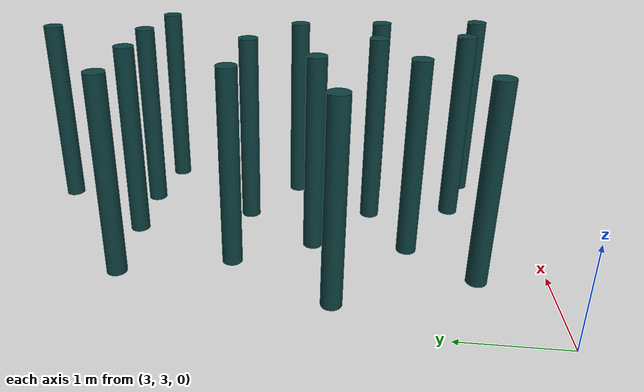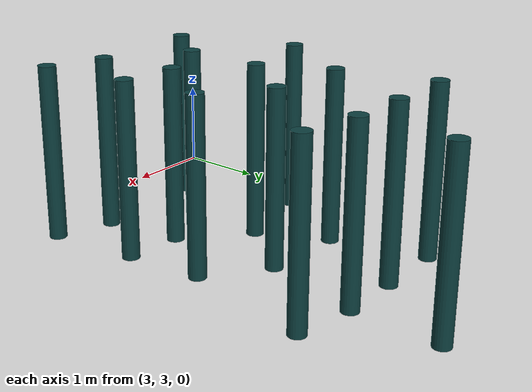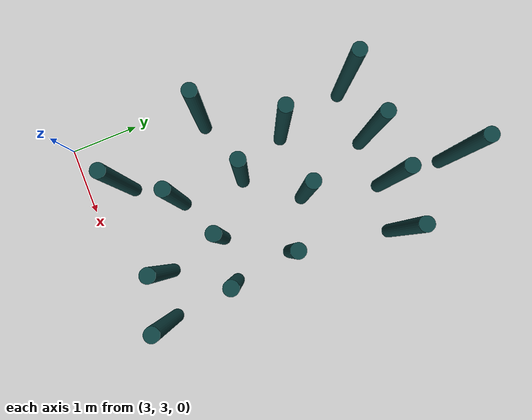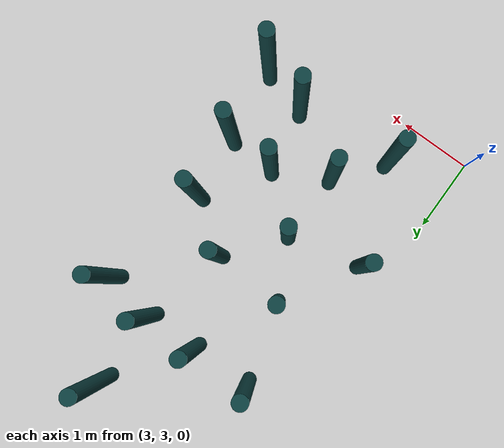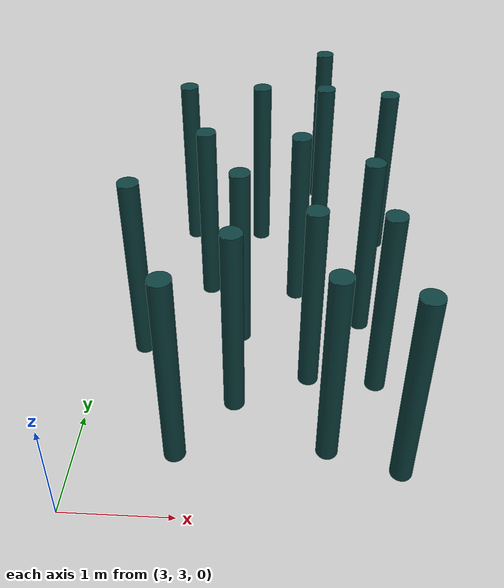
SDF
<sdf version="1.6">
 <world name="default">
  <model name="obstacle_clone_0">
   <link name="link">
    <inertial>
     <mass>112.569</mass>
     <inertia><ixx>33.2512</ixx><ixy>0</ixy><ixz>0</ixz><iyy>33.2512</iyy><iyz>0</iyz><izz>0.537779</izz></inertia>
    </inertial>
    <visual name="visual">
     <geometry><cylinder><radius>0.1</radius><length>2</length></cylinder></geometry>
     <material>
      <script><name>Gazebo/Grey</name><uri>file://media/materials/scripts/gazebo.material</uri></script>
      <shader type="pixel"><normal_map>__default__</normal_map></shader>
      <ambient>0.05 0.25 0.25 1</ambient>
      <diffuse>0.3 0.3 0.3 1</diffuse>
      <specular>0.01 0.01 0.01 1</specular>
      <emissive>0.1 0.1 0.1 1</emissive>
      <lighting>1</lighting>
     </material>
    </visual>
    <collision name="collision">
     <geometry><cylinder><radius>0.097748</radius><length>1.87509</length></cylinder></geometry>
     <surface>
      <friction>
       <ode><mu>1</mu><mu2>1</mu2><fdir1>0 0 0</fdir1><slip1>0</slip1><slip2>0</slip2></ode>
       <torsional>
        <coefficient>1</coefficient>
        <patch_radius>0</patch_radius>
        <surface_radius>0</surface_radius>
        <use_patch_radius>1</use_patch_radius>
        <ode><slip>0</slip></ode>
       </torsional>
      </friction>
      <bounce><restitution_coefficient>0</restitution_coefficient><threshold>1e+06</threshold></bounce>
      <contact>
       <collide_without_contact>0</collide_without_contact>
       <collide_without_contact_bitmask>1</collide_without_contact_bitmask>
       <collide_bitmask>1</collide_bitmask>
       <ode>
        <soft_cfm>0</soft_cfm>
        <soft_erp>0.2</soft_erp>
        <kp>1e+13</kp>
        <kd>1</kd>
        <max_vel>0.01</max_vel>
        <min_depth>0</min_depth>
       </ode>
       <bullet>
        <split_impulse>1</split_impulse>
        <split_impulse_penetration_threshold>-0.01</split_impulse_penetration_threshold>
        <soft_cfm>0</soft_cfm>
        <soft_erp>0.2</soft_erp>
        <kp>1e+13</kp>
        <kd>1</kd>
       </bullet>
      </contact>
     </surface>
    </collision>
   </link>
   <static>0</static>
   <pose>3.40506 5.00264 0.987551 -5.6e-05 2.7e-05 0.015402</pose>
  </model>
  <model name="obstacle_clone_1">
   <link name="link">
    <inertial>
     <mass>112.569</mass>
     <inertia><ixx>33.2512</ixx><ixy>0</ixy><ixz>0</ixz><iyy>33.2512</iyy><iyz>0</iyz><izz>0.537779</izz></inertia>
    </inertial>
    <visual name="visual">
     <geometry><cylinder><radius>0.1</radius><length>2</length></cylinder></geometry>
     <material>
      <script><name>Gazebo/Grey</name><uri>file://media/materials/scripts/gazebo.material</uri></script>
      <shader type="pixel"><normal_map>__default__</normal_map></shader>
      <ambient>0.05 0.25 0.25 1</ambient>
      <diffuse>0.3 0.3 0.3 1</diffuse>
      <specular>0.01 0.01 0.01 1</specular>
      <emissive>0.1 0.1 0.1 1</emissive>
      <lighting>1</lighting>
     </material>
    </visual>
    <collision name="collision">
     <geometry><cylinder><radius>0.097748</radius><length>1.87509</length></cylinder></geometry>
     <surface>
      <friction>
       <ode><mu>1</mu><mu2>1</mu2><fdir1>0 0 0</fdir1><slip1>0</slip1><slip2>0</slip2></ode>
       <torsional>
        <coefficient>1</coefficient>
        <patch_radius>0</patch_radius>
        <surface_radius>0</surface_radius>
        <use_patch_radius>1</use_patch_radius>
        <ode><slip>0</slip></ode>
       </torsional>
      </friction>
      <bounce><restitution_coefficient>0</restitution_coefficient><threshold>1e+06</threshold></bounce>
      <contact>
       <collide_without_contact>0</collide_without_contact>
       <collide_without_contact_bitmask>1</collide_without_contact_bitmask>
       <collide_bitmask>1</collide_bitmask>
       <ode>
        <soft_cfm>0</soft_cfm>
        <soft_erp>0.2</soft_erp>
        <kp>1e+13</kp>
        <kd>1</kd>
        <max_vel>0.01</max_vel>
        <min_depth>0</min_depth>
       </ode>
       <bullet>
        <split_impulse>1</split_impulse>
        <split_impulse_penetration_threshold>-0.01</split_impulse_penetration_threshold>
        <soft_cfm>0</soft_cfm>
        <soft_erp>0.2</soft_erp>
        <kp>1e+13</kp>
        <kd>1</kd>
       </bullet>
      </contact>
     </surface>
    </collision>
   </link>
   <static>0</static>
   <pose>5.64544 5.48256 0.987542 -6e-05 2.6e-05 0.015098</pose>
  </model>
  <model name="obstacle_clone_3">
   <link name="link">
    <inertial>
     <mass>112.569</mass>
     <inertia><ixx>33.2512</ixx><ixy>0</ixy><ixz>0</ixz><iyy>33.2512</iyy><iyz>0</iyz><izz>0.537779</izz></inertia>
    </inertial>
    <visual name="visual">
     <geometry><cylinder><radius>0.1</radius><length>2</length></cylinder></geometry>
     <material>
      <script><name>Gazebo/Grey</name><uri>file://media/materials/scripts/gazebo.material</uri></script>
      <shader type="pixel"><normal_map>__default__</normal_map></shader>
      <ambient>0.05 0.25 0.25 1</ambient>
      <diffuse>0.3 0.3 0.3 1</diffuse>
      <specular>0.01 0.01 0.01 1</specular>
      <emissive>0.1 0.1 0.1 1</emissive>
      <lighting>1</lighting>
     </material>
    </visual>
    <collision name="collision">
     <geometry><cylinder><radius>0.097748</radius><length>1.87509</length></cylinder></geometry>
     <surface>
      <friction>
       <ode><mu>1</mu><mu2>1</mu2><fdir1>0 0 0</fdir1><slip1>0</slip1><slip2>0</slip2></ode>
       <torsional>
        <coefficient>1</coefficient>
        <patch_radius>0</patch_radius>
        <surface_radius>0</surface_radius>
        <use_patch_radius>1</use_patch_radius>
        <ode><slip>0</slip></ode>
       </torsional>
      </friction>
      <bounce><restitution_coefficient>0</restitution_coefficient><threshold>1e+06</threshold></bounce>
      <contact>
       <collide_without_contact>0</collide_without_contact>
       <collide_without_contact_bitmask>1</collide_without_contact_bitmask>
       <collide_bitmask>1</collide_bitmask>
       <ode>
        <soft_cfm>0</soft_cfm>
        <soft_erp>0.2</soft_erp>
        <kp>1e+13</kp>
        <kd>1</kd>
        <max_vel>0.01</max_vel>
        <min_depth>0</min_depth>
       </ode>
       <bullet>
        <split_impulse>1</split_impulse>
        <split_impulse_penetration_threshold>-0.01</split_impulse_penetration_threshold>
        <soft_cfm>0</soft_cfm>
        <soft_erp>0.2</soft_erp>
        <kp>1e+13</kp>
        <kd>1</kd>
       </bullet>
      </contact>
     </surface>
    </collision>
   </link>
   <static>0</static>
   <pose>4.51879 7.09694 0.987544 -3.2e-05 1.5e-05 0.004475</pose>
  </model>
  <model name="obstacle_clone_4">
   <link name="link">
    <inertial>
     <mass>112.569</mass>
     <inertia><ixx>33.2512</ixx><ixy>0</ixy><ixz>0</ixz><iyy>33.2512</iyy><iyz>0</iyz><izz>0.537779</izz></inertia>
    </inertial>
    <visual name="visual">
     <geometry><cylinder><radius>0.1</radius><length>2</length></cylinder></geometry>
     <material>
      <script><name>Gazebo/Grey</name><uri>file://media/materials/scripts/gazebo.material</uri></script>
      <shader type="pixel"><normal_map>__default__</normal_map></shader>
      <ambient>0.05 0.25 0.25 1</ambient>
      <diffuse>0.3 0.3 0.3 1</diffuse>
      <specular>0.01 0.01 0.01 1</specular>
      <emissive>0.1 0.1 0.1 1</emissive>
      <lighting>1</lighting>
     </material>
    </visual>
    <collision name="collision">
     <geometry><cylinder><radius>0.097748</radius><length>1.87509</length></cylinder></geometry>
     <surface>
      <friction>
       <ode><mu>1</mu><mu2>1</mu2><fdir1>0 0 0</fdir1><slip1>0</slip1><slip2>0</slip2></ode>
       <torsional>
        <coefficient>1</coefficient>
        <patch_radius>0</patch_radius>
        <surface_radius>0</surface_radius>
        <use_patch_radius>1</use_patch_radius>
        <ode><slip>0</slip></ode>
       </torsional>
      </friction>
      <bounce><restitution_coefficient>0</restitution_coefficient><threshold>1e+06</threshold></bounce>
      <contact>
       <collide_without_contact>0</collide_without_contact>
       <collide_without_contact_bitmask>1</collide_without_contact_bitmask>
       <collide_bitmask>1</collide_bitmask>
       <ode>
        <soft_cfm>0</soft_cfm>
        <soft_erp>0.2</soft_erp>
        <kp>1e+13</kp>
        <kd>1</kd>
        <max_vel>0.01</max_vel>
        <min_depth>0</min_depth>
       </ode>
       <bullet>
        <split_impulse>1</split_impulse>
        <split_impulse_penetration_threshold>-0.01</split_impulse_penetration_threshold>
        <soft_cfm>0</soft_cfm>
        <soft_erp>0.2</soft_erp>
        <kp>1e+13</kp>
        <kd>1</kd>
       </bullet>
      </contact>
     </surface>
    </collision>
   </link>
   <static>0</static>
   <pose>4.3863 4.28366 0.987541 -5e-05 2.3e-05 0.013957</pose>
  </model>
  <model name="obstacle_clone_5">
   <link name="link">
    <inertial>
     <mass>112.569</mass>
     <inertia><ixx>33.2512</ixx><ixy>0</ixy><ixz>0</ixz><iyy>33.2512</iyy><iyz>0</iyz><izz>0.537779</izz></inertia>
    </inertial>
    <visual name="visual">
     <geometry><cylinder><radius>0.1</radius><length>2</length></cylinder></geometry>
     <material>
      <script><name>Gazebo/Grey</name><uri>file://media/materials/scripts/gazebo.material</uri></script>
      <shader type="pixel"><normal_map>__default__</normal_map></shader>
      <ambient>0.05 0.25 0.25 1</ambient>
      <diffuse>0.3 0.3 0.3 1</diffuse>
      <specular>0.01 0.01 0.01 1</specular>
      <emissive>0.1 0.1 0.1 1</emissive>
      <lighting>1</lighting>
     </material>
    </visual>
    <collision name="collision">
     <geometry><cylinder><radius>0.097748</radius><length>1.87509</length></cylinder></geometry>
     <surface>
      <friction>
       <ode><mu>1</mu><mu2>1</mu2><fdir1>0 0 0</fdir1><slip1>0</slip1><slip2>0</slip2></ode>
       <torsional>
        <coefficient>1</coefficient>
        <patch_radius>0</patch_radius>
        <surface_radius>0</surface_radius>
        <use_patch_radius>1</use_patch_radius>
        <ode><slip>0</slip></ode>
       </torsional>
      </friction>
      <bounce><restitution_coefficient>0</restitution_coefficient><threshold>1e+06</threshold></bounce>
      <contact>
       <collide_without_contact>0</collide_without_contact>
       <collide_without_contact_bitmask>1</collide_without_contact_bitmask>
       <collide_bitmask>1</collide_bitmask>
       <ode>
        <soft_cfm>0</soft_cfm>
        <soft_erp>0.2</soft_erp>
        <kp>1e+13</kp>
        <kd>1</kd>
        <max_vel>0.01</max_vel>
        <min_depth>0</min_depth>
       </ode>
       <bullet>
        <split_impulse>1</split_impulse>
        <split_impulse_penetration_threshold>-0.01</split_impulse_penetration_threshold>
        <soft_cfm>0</soft_cfm>
        <soft_erp>0.2</soft_erp>
        <kp>1e+13</kp>
        <kd>1</kd>
       </bullet>
      </contact>
     </surface>
    </collision>
   </link>
   <static>0</static>
   <pose>4.00006 5.99998 0.987543 -2.8e-05 1.4e-05 0.0121</pose>
  </model>
  <model name="obstacle_clone_7">
   <link name="link">
    <inertial>
     <mass>112.569</mass>
     <inertia><ixx>33.2512</ixx><ixy>0</ixy><ixz>0</ixz><iyy>33.2512</iyy><iyz>0</iyz><izz>0.537779</izz></inertia>
    </inertial>
    <visual name="visual">
     <geometry><cylinder><radius>0.1</radius><length>2</length></cylinder></geometry>
     <material>
      <script><name>Gazebo/Grey</name><uri>file://media/materials/scripts/gazebo.material</uri></script>
      <shader type="pixel"><normal_map>__default__</normal_map></shader>
      <ambient>0.05 0.25 0.25 1</ambient>
      <diffuse>0.3 0.3 0.3 1</diffuse>
      <specular>0.01 0.01 0.01 1</specular>
      <emissive>0.1 0.1 0.1 1</emissive>
      <lighting>1</lighting>
     </material>
    </visual>
    <collision name="collision">
     <geometry><cylinder><radius>0.097748</radius><length>1.87509</length></cylinder></geometry>
     <surface>
      <friction>
       <ode><mu>1</mu><mu2>1</mu2><fdir1>0 0 0</fdir1><slip1>0</slip1><slip2>0</slip2></ode>
       <torsional>
        <coefficient>1</coefficient>
        <patch_radius>0</patch_radius>
        <surface_radius>0</surface_radius>
        <use_patch_radius>1</use_patch_radius>
        <ode><slip>0</slip></ode>
       </torsional>
      </friction>
      <bounce><restitution_coefficient>0</restitution_coefficient><threshold>1e+06</threshold></bounce>
      <contact>
       <collide_without_contact>0</collide_without_contact>
       <collide_without_contact_bitmask>1</collide_without_contact_bitmask>
       <collide_bitmask>1</collide_bitmask>
       <ode>
        <soft_cfm>0</soft_cfm>
        <soft_erp>0.2</soft_erp>
        <kp>1e+13</kp>
        <kd>1</kd>
        <max_vel>0.01</max_vel>
        <min_depth>0</min_depth>
       </ode>
       <bullet>
        <split_impulse>1</split_impulse>
        <split_impulse_penetration_threshold>-0.01</split_impulse_penetration_threshold>
        <soft_cfm>0</soft_cfm>
        <soft_erp>0.2</soft_erp>
        <kp>1e+13</kp>
        <kd>1</kd>
       </bullet>
      </contact>
     </surface>
    </collision>
   </link>
   <static>0</static>
   <pose>5.25653 3.76481 0.987542 -6.1e-05 2.9e-05 0.02062</pose>
  </model>
  <model name="obstacle_clone_8">
   <link name="link">
    <inertial>
     <mass>112.569</mass>
     <inertia><ixx>33.2512</ixx><ixy>0</ixy><ixz>0</ixz><iyy>33.2512</iyy><iyz>0</iyz><izz>0.537779</izz></inertia>
    </inertial>
    <visual name="visual">
     <geometry><cylinder><radius>0.1</radius><length>2</length></cylinder></geometry>
     <material>
      <script><name>Gazebo/Grey</name><uri>file://media/materials/scripts/gazebo.material</uri></script>
      <shader type="pixel"><normal_map>__default__</normal_map></shader>
      <ambient>0.05 0.25 0.25 1</ambient>
      <diffuse>0.3 0.3 0.3 1</diffuse>
      <specular>0.01 0.01 0.01 1</specular>
      <emissive>0.1 0.1 0.1 1</emissive>
      <lighting>1</lighting>
     </material>
    </visual>
    <collision name="collision">
     <geometry><cylinder><radius>0.097748</radius><length>1.87509</length></cylinder></geometry>
     <surface>
      <friction>
       <ode><mu>1</mu><mu2>1</mu2><fdir1>0 0 0</fdir1><slip1>0</slip1><slip2>0</slip2></ode>
       <torsional>
        <coefficient>1</coefficient>
        <patch_radius>0</patch_radius>
        <surface_radius>0</surface_radius>
        <use_patch_radius>1</use_patch_radius>
        <ode><slip>0</slip></ode>
       </torsional>
      </friction>
      <bounce><restitution_coefficient>0</restitution_coefficient><threshold>1e+06</threshold></bounce>
      <contact>
       <collide_without_contact>0</collide_without_contact>
       <collide_without_contact_bitmask>1</collide_without_contact_bitmask>
       <collide_bitmask>1</collide_bitmask>
       <ode>
        <soft_cfm>0</soft_cfm>
        <soft_erp>0.2</soft_erp>
        <kp>1e+13</kp>
        <kd>1</kd>
        <max_vel>0.01</max_vel>
        <min_depth>0</min_depth>
       </ode>
       <bullet>
        <split_impulse>1</split_impulse>
        <split_impulse_penetration_threshold>-0.01</split_impulse_penetration_threshold>
        <soft_cfm>0</soft_cfm>
        <soft_erp>0.2</soft_erp>
        <kp>1e+13</kp>
        <kd>1</kd>
       </bullet>
      </contact>
     </surface>
    </collision>
   </link>
   <static>0</static>
   <pose>4.96005 5.95574 0.987552 -6.2e-05 2.9e-05 0.015441</pose>
  </model>
  <model name="obstacle_clone_10">
   <link name="link">
    <inertial>
     <mass>112.569</mass>
     <inertia><ixx>33.2512</ixx><ixy>0</ixy><ixz>0</ixz><iyy>33.2512</iyy><iyz>0</iyz><izz>0.537779</izz></inertia>
    </inertial>
    <visual name="visual">
     <geometry><cylinder><radius>0.1</radius><length>2</length></cylinder></geometry>
     <material>
      <script><name>Gazebo/Grey</name><uri>file://media/materials/scripts/gazebo.material</uri></script>
      <shader type="pixel"><normal_map>__default__</normal_map></shader>
      <ambient>0.05 0.25 0.25 1</ambient>
      <diffuse>0.3 0.3 0.3 1</diffuse>
      <specular>0.01 0.01 0.01 1</specular>
      <emissive>0.1 0.1 0.1 1</emissive>
      <lighting>1</lighting>
     </material>
    </visual>
    <collision name="collision">
     <geometry><cylinder><radius>0.097748</radius><length>1.87509</length></cylinder></geometry>
     <surface>
      <friction>
       <ode><mu>1</mu><mu2>1</mu2><fdir1>0 0 0</fdir1><slip1>0</slip1><slip2>0</slip2></ode>
       <torsional>
        <coefficient>1</coefficient>
        <patch_radius>0</patch_radius>
        <surface_radius>0</surface_radius>
        <use_patch_radius>1</use_patch_radius>
        <ode><slip>0</slip></ode>
       </torsional>
      </friction>
      <bounce><restitution_coefficient>0</restitution_coefficient><threshold>1e+06</threshold></bounce>
      <contact>
       <collide_without_contact>0</collide_without_contact>
       <collide_without_contact_bitmask>1</collide_without_contact_bitmask>
       <collide_bitmask>1</collide_bitmask>
       <ode>
        <soft_cfm>0</soft_cfm>
        <soft_erp>0.2</soft_erp>
        <kp>1e+13</kp>
        <kd>1</kd>
        <max_vel>0.01</max_vel>
        <min_depth>0</min_depth>
       </ode>
       <bullet>
        <split_impulse>1</split_impulse>
        <split_impulse_penetration_threshold>-0.01</split_impulse_penetration_threshold>
        <soft_cfm>0</soft_cfm>
        <soft_erp>0.2</soft_erp>
        <kp>1e+13</kp>
        <kd>1</kd>
       </bullet>
      </contact>
     </surface>
    </collision>
   </link>
   <static>0</static>
   <pose>3.89885 3.66066 0.987552 -6.2e-05 2.8e-05 0.012829</pose>
  </model>
  <model name="obstacle_clone_11">
   <link name="link">
    <inertial>
     <mass>112.569</mass>
     <inertia><ixx>33.2512</ixx><ixy>0</ixy><ixz>0</ixz><iyy>33.2512</iyy><iyz>0</iyz><izz>0.537779</izz></inertia>
    </inertial>
    <visual name="visual">
     <geometry><cylinder><radius>0.1</radius><length>2</length></cylinder></geometry>
     <material>
      <script><name>Gazebo/Grey</name><uri>file://media/materials/scripts/gazebo.material</uri></script>
      <shader type="pixel"><normal_map>__default__</normal_map></shader>
      <ambient>0.05 0.25 0.25 1</ambient>
      <diffuse>0.3 0.3 0.3 1</diffuse>
      <specular>0.01 0.01 0.01 1</specular>
      <emissive>0.1 0.1 0.1 1</emissive>
      <lighting>1</lighting>
     </material>
    </visual>
    <collision name="collision">
     <geometry><cylinder><radius>0.097748</radius><length>1.87509</length></cylinder></geometry>
     <surface>
      <friction>
       <ode><mu>1</mu><mu2>1</mu2><fdir1>0 0 0</fdir1><slip1>0</slip1><slip2>0</slip2></ode>
       <torsional>
        <coefficient>1</coefficient>
        <patch_radius>0</patch_radius>
        <surface_radius>0</surface_radius>
        <use_patch_radius>1</use_patch_radius>
        <ode><slip>0</slip></ode>
       </torsional>
      </friction>
      <bounce><restitution_coefficient>0</restitution_coefficient><threshold>1e+06</threshold></bounce>
      <contact>
       <collide_without_contact>0</collide_without_contact>
       <collide_without_contact_bitmask>1</collide_without_contact_bitmask>
       <collide_bitmask>1</collide_bitmask>
       <ode>
        <soft_cfm>0</soft_cfm>
        <soft_erp>0.2</soft_erp>
        <kp>1e+13</kp>
        <kd>1</kd>
        <max_vel>0.01</max_vel>
        <min_depth>0</min_depth>
       </ode>
       <bullet>
        <split_impulse>1</split_impulse>
        <split_impulse_penetration_threshold>-0.01</split_impulse_penetration_threshold>
        <soft_cfm>0</soft_cfm>
        <soft_erp>0.2</soft_erp>
        <kp>1e+13</kp>
        <kd>1</kd>
       </bullet>
      </contact>
     </surface>
    </collision>
   </link>
   <static>0</static>
   <pose>5.23748 8.11375 0.987544 -2.8e-05 1.3e-05 0.014505</pose>
  </model>
  <model name="obstacle_clone_13">
   <link name="link">
    <inertial>
     <mass>112.569</mass>
     <inertia><ixx>33.2512</ixx><ixy>0</ixy><ixz>0</ixz><iyy>33.2512</iyy><iyz>0</iyz><izz>0.537779</izz></inertia>
    </inertial>
    <visual name="visual">
     <geometry><cylinder><radius>0.1</radius><length>2</length></cylinder></geometry>
     <material>
      <script><name>Gazebo/Grey</name><uri>file://media/materials/scripts/gazebo.material</uri></script>
      <shader type="pixel"><normal_map>__default__</normal_map></shader>
      <ambient>0.05 0.25 0.25 1</ambient>
      <diffuse>0.3 0.3 0.3 1</diffuse>
      <specular>0.01 0.01 0.01 1</specular>
      <emissive>0.1 0.1 0.1 1</emissive>
      <lighting>1</lighting>
     </material>
    </visual>
    <collision name="collision">
     <geometry><cylinder><radius>0.097748</radius><length>1.87509</length></cylinder></geometry>
     <surface>
      <friction>
       <ode><mu>1</mu><mu2>1</mu2><fdir1>0 0 0</fdir1><slip1>0</slip1><slip2>0</slip2></ode>
       <torsional>
        <coefficient>1</coefficient>
        <patch_radius>0</patch_radius>
        <surface_radius>0</surface_radius>
        <use_patch_radius>1</use_patch_radius>
        <ode><slip>0</slip></ode>
       </torsional>
      </friction>
      <bounce><restitution_coefficient>0</restitution_coefficient><threshold>1e+06</threshold></bounce>
      <contact>
       <collide_without_contact>0</collide_without_contact>
       <collide_without_contact_bitmask>1</collide_without_contact_bitmask>
       <collide_bitmask>1</collide_bitmask>
       <ode>
        <soft_cfm>0</soft_cfm>
        <soft_erp>0.2</soft_erp>
        <kp>1e+13</kp>
        <kd>1</kd>
        <max_vel>0.01</max_vel>
        <min_depth>0</min_depth>
       </ode>
       <bullet>
        <split_impulse>1</split_impulse>
        <split_impulse_penetration_threshold>-0.01</split_impulse_penetration_threshold>
        <soft_cfm>0</soft_cfm>
        <soft_erp>0.2</soft_erp>
        <kp>1e+13</kp>
        <kd>1</kd>
       </bullet>
      </contact>
     </surface>
    </collision>
   </link>
   <static>0</static>
   <pose>3.70207 7.07835 0.987541 -5.7e-05 2.5e-05 0.007591</pose>
  </model>
  <model name="obstacle_clone_16">
   <link name="link">
    <inertial>
     <mass>112.569</mass>
     <inertia><ixx>33.2512</ixx><ixy>0</ixy><ixz>0</ixz><iyy>33.2512</iyy><iyz>0</iyz><izz>0.537779</izz></inertia>
    </inertial>
    <visual name="visual">
     <geometry><cylinder><radius>0.1</radius><length>2</length></cylinder></geometry>
     <material>
      <script><name>Gazebo/Grey</name><uri>file://media/materials/scripts/gazebo.material</uri></script>
      <shader type="pixel"><normal_map>__default__</normal_map></shader>
      <ambient>0.05 0.25 0.25 1</ambient>
      <diffuse>0.3 0.3 0.3 1</diffuse>
      <specular>0.01 0.01 0.01 1</specular>
      <emissive>0.1 0.1 0.1 1</emissive>
      <lighting>1</lighting>
     </material>
    </visual>
    <collision name="collision">
     <geometry><cylinder><radius>0.097748</radius><length>1.87509</length></cylinder></geometry>
     <surface>
      <friction>
       <ode><mu>1</mu><mu2>1</mu2><fdir1>0 0 0</fdir1><slip1>0</slip1><slip2>0</slip2></ode>
       <torsional>
        <coefficient>1</coefficient>
        <patch_radius>0</patch_radius>
        <surface_radius>0</surface_radius>
        <use_patch_radius>1</use_patch_radius>
        <ode><slip>0</slip></ode>
       </torsional>
      </friction>
      <bounce><restitution_coefficient>0</restitution_coefficient><threshold>1e+06</threshold></bounce>
      <contact>
       <collide_without_contact>0</collide_without_contact>
       <collide_without_contact_bitmask>1</collide_without_contact_bitmask>
       <collide_bitmask>1</collide_bitmask>
       <ode>
        <soft_cfm>0</soft_cfm>
        <soft_erp>0.2</soft_erp>
        <kp>1e+13</kp>
        <kd>1</kd>
        <max_vel>0.01</max_vel>
        <min_depth>0</min_depth>
       </ode>
       <bullet>
        <split_impulse>1</split_impulse>
        <split_impulse_penetration_threshold>-0.01</split_impulse_penetration_threshold>
        <soft_cfm>0</soft_cfm>
        <soft_erp>0.2</soft_erp>
        <kp>1e+13</kp>
        <kd>1</kd>
       </bullet>
      </contact>
     </surface>
    </collision>
   </link>
   <static>0</static>
   <pose>5.22691 7.10258 0.987541 -5.2e-05 2.2e-05 0.013813</pose>
  </model>
  <model name="obstacle_clone_17">
   <link name="link">
    <inertial>
     <mass>112.569</mass>
     <inertia><ixx>33.2512</ixx><ixy>0</ixy><ixz>0</ixz><iyy>33.2512</iyy><iyz>0</iyz><izz>0.537779</izz></inertia>
    </inertial>
    <visual name="visual">
     <geometry><cylinder><radius>0.1</radius><length>2</length></cylinder></geometry>
     <material>
      <script><name>Gazebo/Grey</name><uri>file://media/materials/scripts/gazebo.material</uri></script>
      <shader type="pixel"><normal_map>__default__</normal_map></shader>
      <ambient>0.05 0.25 0.25 1</ambient>
      <diffuse>0.3 0.3 0.3 1</diffuse>
      <specular>0.01 0.01 0.01 1</specular>
      <emissive>0.1 0.1 0.1 1</emissive>
      <lighting>1</lighting>
     </material>
    </visual>
    <collision name="collision">
     <geometry><cylinder><radius>0.097748</radius><length>1.87509</length></cylinder></geometry>
     <surface>
      <friction>
       <ode><mu>1</mu><mu2>1</mu2><fdir1>0 0 0</fdir1><slip1>0</slip1><slip2>0</slip2></ode>
       <torsional>
        <coefficient>1</coefficient>
        <patch_radius>0</patch_radius>
        <surface_radius>0</surface_radius>
        <use_patch_radius>1</use_patch_radius>
        <ode><slip>0</slip></ode>
       </torsional>
      </friction>
      <bounce><restitution_coefficient>0</restitution_coefficient><threshold>1e+06</threshold></bounce>
      <contact>
       <collide_without_contact>0</collide_without_contact>
       <collide_without_contact_bitmask>1</collide_without_contact_bitmask>
       <collide_bitmask>1</collide_bitmask>
       <ode>
        <soft_cfm>0</soft_cfm>
        <soft_erp>0.2</soft_erp>
        <kp>1e+13</kp>
        <kd>1</kd>
        <max_vel>0.01</max_vel>
        <min_depth>0</min_depth>
       </ode>
       <bullet>
        <split_impulse>1</split_impulse>
        <split_impulse_penetration_threshold>-0.01</split_impulse_penetration_threshold>
        <soft_cfm>0</soft_cfm>
        <soft_erp>0.2</soft_erp>
        <kp>1e+13</kp>
        <kd>1</kd>
       </bullet>
      </contact>
     </surface>
    </collision>
   </link>
   <static>0</static>
   <pose>5.89848 3.57186 0.987542 -5.6e-05 2.7e-05 0.01236</pose>
  </model>
  <model name="obstacle_clone_19">
   <link name="link">
    <inertial>
     <mass>112.569</mass>
     <inertia><ixx>33.2512</ixx><ixy>0</ixy><ixz>0</ixz><iyy>33.2512</iyy><iyz>0</iyz><izz>0.537779</izz></inertia>
    </inertial>
    <visual name="visual">
     <geometry><cylinder><radius>0.1</radius><length>2</length></cylinder></geometry>
     <material>
      <script><name>Gazebo/Grey</name><uri>file://media/materials/scripts/gazebo.material</uri></script>
      <shader type="pixel"><normal_map>__default__</normal_map></shader>
      <ambient>0.05 0.25 0.25 1</ambient>
      <diffuse>0.3 0.3 0.3 1</diffuse>
      <specular>0.01 0.01 0.01 1</specular>
      <emissive>0.1 0.1 0.1 1</emissive>
      <lighting>1</lighting>
     </material>
    </visual>
    <collision name="collision">
     <geometry><cylinder><radius>0.097748</radius><length>1.87509</length></cylinder></geometry>
     <surface>
      <friction>
       <ode><mu>1</mu><mu2>1</mu2><fdir1>0 0 0</fdir1><slip1>0</slip1><slip2>0</slip2></ode>
       <torsional>
        <coefficient>1</coefficient>
        <patch_radius>0</patch_radius>
        <surface_radius>0</surface_radius>
        <use_patch_radius>1</use_patch_radius>
        <ode><slip>0</slip></ode>
       </torsional>
      </friction>
      <bounce><restitution_coefficient>0</restitution_coefficient><threshold>1e+06</threshold></bounce>
      <contact>
       <collide_without_contact>0</collide_without_contact>
       <collide_without_contact_bitmask>1</collide_without_contact_bitmask>
       <collide_bitmask>1</collide_bitmask>
       <ode>
        <soft_cfm>0</soft_cfm>
        <soft_erp>0.2</soft_erp>
        <kp>1e+13</kp>
        <kd>1</kd>
        <max_vel>0.01</max_vel>
        <min_depth>0</min_depth>
       </ode>
       <bullet>
        <split_impulse>1</split_impulse>
        <split_impulse_penetration_threshold>-0.01</split_impulse_penetration_threshold>
        <soft_cfm>0</soft_cfm>
        <soft_erp>0.2</soft_erp>
        <kp>1e+13</kp>
        <kd>1</kd>
       </bullet>
      </contact>
     </surface>
    </collision>
   </link>
   <static>0</static>
   <pose>5.9187 6.98158 0.987543 -3.1e-05 1.4e-05 0.005729</pose>
  </model>
  <model name="obstacle_clone_22">
   <link name="link">
    <inertial>
     <mass>112.569</mass>
     <inertia><ixx>33.2512</ixx><ixy>0</ixy><ixz>0</ixz><iyy>33.2512</iyy><iyz>0</iyz><izz>0.537779</izz></inertia>
    </inertial>
    <visual name="visual">
     <geometry><cylinder><radius>0.1</radius><length>2</length></cylinder></geometry>
     <material>
      <script><name>Gazebo/Grey</name><uri>file://media/materials/scripts/gazebo.material</uri></script>
      <shader type="pixel"><normal_map>__default__</normal_map></shader>
      <ambient>0.05 0.25 0.25 1</ambient>
      <diffuse>0.3 0.3 0.3 1</diffuse>
      <specular>0.01 0.01 0.01 1</specular>
      <emissive>0.1 0.1 0.1 1</emissive>
      <lighting>1</lighting>
     </material>
    </visual>
    <collision name="collision">
     <geometry><cylinder><radius>0.097748</radius><length>1.87509</length></cylinder></geometry>
     <surface>
      <friction>
       <ode><mu>1</mu><mu2>1</mu2><fdir1>0 0 0</fdir1><slip1>0</slip1><slip2>0</slip2></ode>
       <torsional>
        <coefficient>1</coefficient>
        <patch_radius>0</patch_radius>
        <surface_radius>0</surface_radius>
        <use_patch_radius>1</use_patch_radius>
        <ode><slip>0</slip></ode>
       </torsional>
      </friction>
      <bounce><restitution_coefficient>0</restitution_coefficient><threshold>1e+06</threshold></bounce>
      <contact>
       <collide_without_contact>0</collide_without_contact>
       <collide_without_contact_bitmask>1</collide_without_contact_bitmask>
       <collide_bitmask>1</collide_bitmask>
       <ode>
        <soft_cfm>0</soft_cfm>
        <soft_erp>0.2</soft_erp>
        <kp>1e+13</kp>
        <kd>1</kd>
        <max_vel>0.01</max_vel>
        <min_depth>0</min_depth>
       </ode>
       <bullet>
        <split_impulse>1</split_impulse>
        <split_impulse_penetration_threshold>-0.01</split_impulse_penetration_threshold>
        <soft_cfm>0</soft_cfm>
        <soft_erp>0.2</soft_erp>
        <kp>1e+13</kp>
        <kd>1</kd>
       </bullet>
      </contact>
     </surface>
    </collision>
   </link>
   <static>0</static>
   <pose>5.7506 4.60333 0.987542 -5.9e-05 2.4e-05 -0.089182</pose>
  </model>
  <model name="obstacle_clone_23">
   <link name="link">
    <inertial>
     <mass>112.569</mass>
     <inertia><ixx>33.2512</ixx><ixy>0</ixy><ixz>0</ixz><iyy>33.2512</iyy><iyz>0</iyz><izz>0.537779</izz></inertia>
    </inertial>
    <visual name="visual">
     <geometry><cylinder><radius>0.1</radius><length>2</length></cylinder></geometry>
     <material>
      <script><name>Gazebo/Grey</name><uri>file://media/materials/scripts/gazebo.material</uri></script>
      <shader type="pixel"><normal_map>__default__</normal_map></shader>
      <ambient>0.05 0.25 0.25 1</ambient>
      <diffuse>0.3 0.3 0.3 1</diffuse>
      <specular>0.01 0.01 0.01 1</specular>
      <emissive>0.1 0.1 0.1 1</emissive>
      <lighting>1</lighting>
     </material>
    </visual>
    <collision name="collision">
     <geometry><cylinder><radius>0.097748</radius><length>1.87509</length></cylinder></geometry>
     <surface>
      <friction>
       <ode><mu>1</mu><mu2>1</mu2><fdir1>0 0 0</fdir1><slip1>0</slip1><slip2>0</slip2></ode>
       <torsional>
        <coefficient>1</coefficient>
        <patch_radius>0</patch_radius>
        <surface_radius>0</surface_radius>
        <use_patch_radius>1</use_patch_radius>
        <ode><slip>0</slip></ode>
       </torsional>
      </friction>
      <bounce><restitution_coefficient>0</restitution_coefficient><threshold>1e+06</threshold></bounce>
      <contact>
       <collide_without_contact>0</collide_without_contact>
       <collide_without_contact_bitmask>1</collide_without_contact_bitmask>
       <collide_bitmask>1</collide_bitmask>
       <ode>
        <soft_cfm>0</soft_cfm>
        <soft_erp>0.2</soft_erp>
        <kp>1e+13</kp>
        <kd>1</kd>
        <max_vel>0.01</max_vel>
        <min_depth>0</min_depth>
       </ode>
       <bullet>
        <split_impulse>1</split_impulse>
        <split_impulse_penetration_threshold>-0.01</split_impulse_penetration_threshold>
        <soft_cfm>0</soft_cfm>
        <soft_erp>0.2</soft_erp>
        <kp>1e+13</kp>
        <kd>1</kd>
       </bullet>
      </contact>
     </surface>
    </collision>
   </link>
   <static>0</static>
   <pose>5.09205 4.64512 0.987551 -6e-05 2.6e-05 0.015181</pose>
  </model>
  <model name="obstacle_clone_26">
   <link name="link">
    <inertial>
     <mass>112.569</mass>
     <inertia><ixx>33.2512</ixx><ixy>0</ixy><ixz>0</ixz><iyy>33.2512</iyy><iyz>0</iyz><izz>0.537779</izz></inertia>
    </inertial>
    <visual name="visual">
     <geometry><cylinder><radius>0.1</radius><length>2</length></cylinder></geometry>
     <material>
      <script><name>Gazebo/Grey</name><uri>file://media/materials/scripts/gazebo.material</uri></script>
      <shader type="pixel"><normal_map>__default__</normal_map></shader>
      <ambient>0.05 0.25 0.25 1</ambient>
      <diffuse>0.3 0.3 0.3 1</diffuse>
      <specular>0.01 0.01 0.01 1</specular>
      <emissive>0.1 0.1 0.1 1</emissive>
      <lighting>1</lighting>
     </material>
    </visual>
    <collision name="collision">
     <geometry><cylinder><radius>0.097748</radius><length>1.87509</length></cylinder></geometry>
     <surface>
      <friction>
       <ode><mu>1</mu><mu2>1</mu2><fdir1>0 0 0</fdir1><slip1>0</slip1><slip2>0</slip2></ode>
       <torsional>
        <coefficient>1</coefficient>
        <patch_radius>0</patch_radius>
        <surface_radius>0</surface_radius>
        <use_patch_radius>1</use_patch_radius>
        <ode><slip>0</slip></ode>
       </torsional>
      </friction>
      <bounce><restitution_coefficient>0</restitution_coefficient><threshold>1e+06</threshold></bounce>
      <contact>
       <collide_without_contact>0</collide_without_contact>
       <collide_without_contact_bitmask>1</collide_without_contact_bitmask>
       <collide_bitmask>1</collide_bitmask>
       <ode>
        <soft_cfm>0</soft_cfm>
        <soft_erp>0.2</soft_erp>
        <kp>1e+13</kp>
        <kd>1</kd>
        <max_vel>0.01</max_vel>
        <min_depth>0</min_depth>
       </ode>
       <bullet>
        <split_impulse>1</split_impulse>
        <split_impulse_penetration_threshold>-0.01</split_impulse_penetration_threshold>
        <soft_cfm>0</soft_cfm>
        <soft_erp>0.2</soft_erp>
        <kp>1e+13</kp>
        <kd>1</kd>
       </bullet>
      </contact>
     </surface>
    </collision>
   </link>
   <static>0</static>
   <pose>4.39157 5.23093 0.987544 -3.1e-05 1.5e-05 0.01373</pose>
  </model>
 </world>
</sdf>
